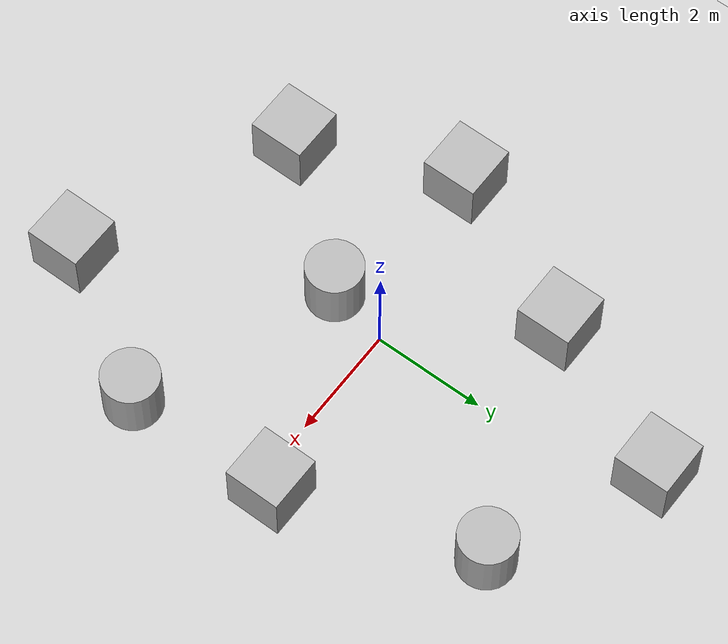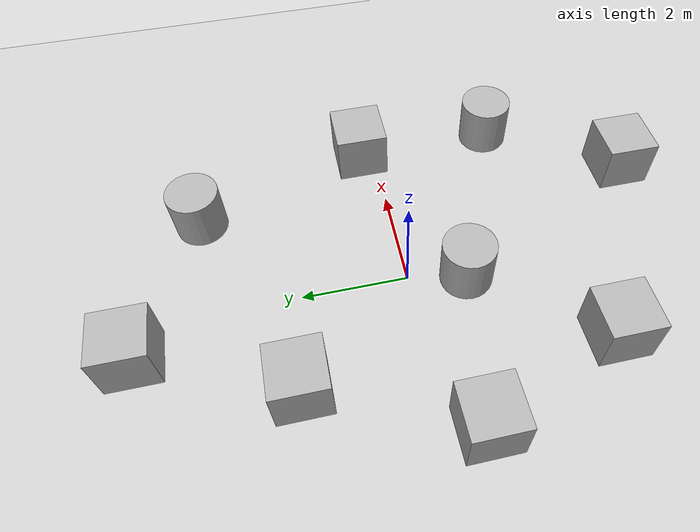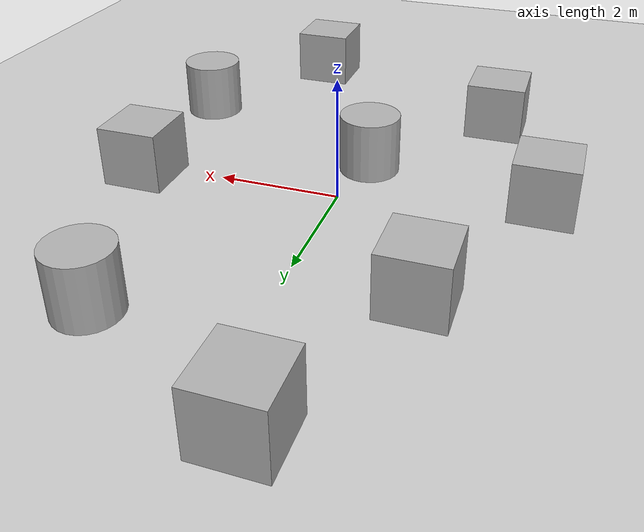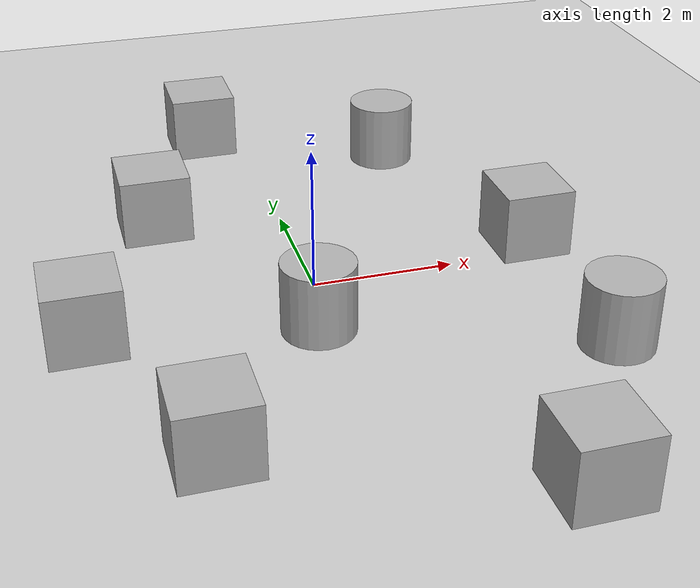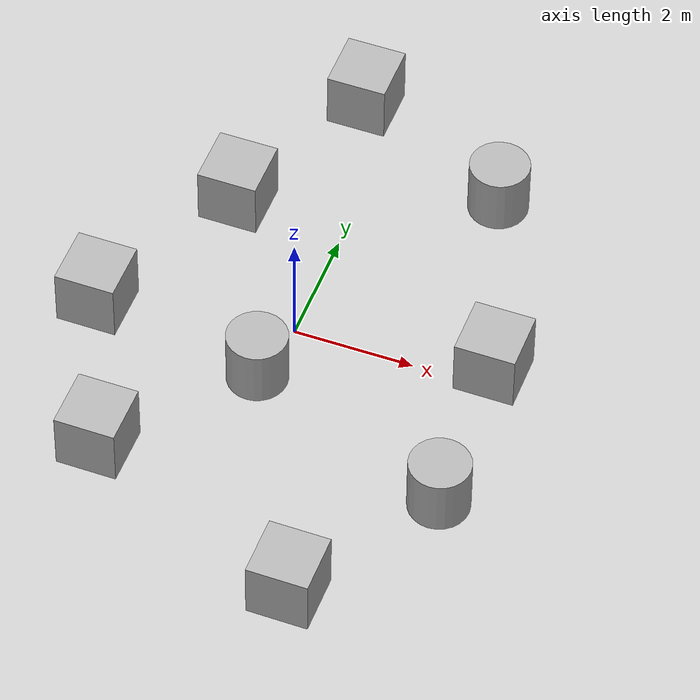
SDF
<sdf version='1.10'>
  <world name='empty'>
    <physics name='1ms' type='ignored'>
      <max_step_size>0.001</max_step_size>
      <real_time_factor>1</real_time_factor>
      <real_time_update_rate>1000</real_time_update_rate>
    </physics>
    <plugin name='gz::sim::systems::Physics' filename='gz-sim-physics-system'/>
    <plugin name='gz::sim::systems::UserCommands' filename='gz-sim-user-commands-system'/>
    <plugin name='gz::sim::systems::SceneBroadcaster' filename='gz-sim-scene-broadcaster-system'/>
    <plugin name='gz::sim::systems::Sensors' filename='gz-sim-sensors-system'>
      <render_engine>ogre2</render_engine>
    </plugin>
    <plugin name='gz::sim::systems::Contact' filename='gz-sim-contact-system'/>
    <gravity>0 0 -9.8000000000000007</gravity>
    <magnetic_field>5.5644999999999998e-06 2.2875799999999999e-05 -4.2388400000000002e-05</magnetic_field>
    <atmosphere type='adiabatic'/>
    <scene>
      <ambient>0.400000006 0.400000006 0.400000006 1</ambient>
      <background>0.699999988 0.699999988 0.699999988 1</background>
      <shadows>true</shadows>
    </scene>
    <model name='ground_plane'>
      <static>true</static>
      <link name='link'>
        <collision name='collision'>
          <geometry>
            <plane>
              <normal>0 0 1</normal>
              <size>100 100</size>
            </plane>
          </geometry>
          <surface>
            <friction>
              <ode/>
            </friction>
            <bounce/>
            <contact/>
          </surface>
        </collision>
        <visual name='visual'>
          <geometry>
            <plane>
              <normal>0 0 1</normal>
              <size>100 100</size>
            </plane>
          </geometry>
          <material>
            <ambient>0.800000012 0.800000012 0.800000012 1</ambient>
            <diffuse>0.800000012 0.800000012 0.800000012 1</diffuse>
            <specular>0.800000012 0.800000012 0.800000012 1</specular>
          </material>
        </visual>
        <pose>0 0 0 0 0 0</pose>
        <inertial>
          <pose>0 0 0 0 0 0</pose>
          <mass>1</mass>
          <inertia>
            <ixx>1</ixx>
            <ixy>0</ixy>
            <ixz>0</ixz>
            <iyy>1</iyy>
            <iyz>0</iyz>
            <izz>1</izz>
          </inertia>
        </inertial>
        <enable_wind>false</enable_wind>
      </link>
      <pose>0 0 0 0 0 0</pose>
      <self_collide>false</self_collide>
    </model>
    <model name='box'>
      <pose>1.8029219467110664 -4.9402323017846799 0.49999999980497606 1.0048033485058014e-21 -2.4640853465547739e-21 -3.9210766489770922e-22</pose>
      <link name='box_link'>
        <inertial>
          <inertia>
            <ixx>0.16666</ixx>
            <ixy>0</ixy>
            <ixz>0</ixz>
            <iyy>0.16666</iyy>
            <iyz>0</iyz>
            <izz>0.16666</izz>
          </inertia>
          <mass>1</mass>
          <pose>0 0 0 0 0 0</pose>
        </inertial>
        <collision name='box_collision'>
          <geometry>
            <box>
              <size>1 1 1</size>
            </box>
          </geometry>
          <surface>
            <friction>
              <ode/>
            </friction>
            <bounce/>
            <contact/>
          </surface>
        </collision>
        <visual name='box_visual'>
          <geometry>
            <box>
              <size>1 1 1</size>
            </box>
          </geometry>
          <material>
            <ambient>0.300000012 0.300000012 0.300000012 1</ambient>
            <diffuse>0.699999988 0.699999988 0.699999988 1</diffuse>
            <specular>1 1 1 1</specular>
          </material>
        </visual>
        <pose>0 0 0 0 0 0</pose>
        <enable_wind>false</enable_wind>
      </link>
      <static>false</static>
      <self_collide>false</self_collide>
    </model>
    <model name='cylinder'>
      <pose>2.1278173043812618 3.7029515542140965 0.49999943207967634 2.5210160480119534e-20 1.5537065464925922e-20 -8.8626556358186986e-21</pose>
      <link name='cylinder_link'>
        <inertial>
          <inertia>
            <ixx>0.14580000000000001</ixx>
            <ixy>0</ixy>
            <ixz>0</ixz>
            <iyy>0.14580000000000001</iyy>
            <iyz>0</iyz>
            <izz>0.125</izz>
          </inertia>
          <mass>1</mass>
          <pose>0 0 0 0 0 0</pose>
        </inertial>
        <collision name='cylinder_collision'>
          <geometry>
            <cylinder>
              <radius>0.5</radius>
              <length>1</length>
            </cylinder>
          </geometry>
          <surface>
            <friction>
              <ode/>
            </friction>
            <bounce/>
            <contact/>
          </surface>
        </collision>
        <visual name='cylinder_visual'>
          <geometry>
            <cylinder>
              <radius>0.5</radius>
              <length>1</length>
            </cylinder>
          </geometry>
          <material>
            <ambient>0.300000012 0.300000012 0.300000012 1</ambient>
            <diffuse>0.699999988 0.699999988 0.699999988 1</diffuse>
            <specular>1 1 1 1</specular>
          </material>
        </visual>
        <pose>0 0 0 0 0 0</pose>
        <enable_wind>false</enable_wind>
      </link>
      <static>false</static>
      <self_collide>false</self_collide>
    </model>
    <model name='box_0'>
      <pose>3.2428602910340398 0.29976069410059664 0.49999999990199806 6.0340761336322896e-22 9.0386193497931382e-22 -1.7912779165349038e-22</pose>
      <link name='box_link'>
        <inertial>
          <inertia>
            <ixx>0.16666</ixx>
            <ixy>0</ixy>
            <ixz>0</ixz>
            <iyy>0.16666</iyy>
            <iyz>0</iyz>
            <izz>0.16666</izz>
          </inertia>
          <mass>1</mass>
          <pose>0 0 0 0 0 0</pose>
        </inertial>
        <collision name='box_collision'>
          <geometry>
            <box>
              <size>1 1 1</size>
            </box>
          </geometry>
          <surface>
            <friction>
              <ode/>
            </friction>
            <bounce/>
            <contact/>
          </surface>
        </collision>
        <visual name='box_visual'>
          <geometry>
            <box>
              <size>1 1 1</size>
            </box>
          </geometry>
          <material>
            <ambient>0.300000012 0.300000012 0.300000012 1</ambient>
            <diffuse>0.699999988 0.699999988 0.699999988 1</diffuse>
            <specular>1 1 1 1</specular>
          </material>
        </visual>
        <pose>0 0 0 0 0 0</pose>
        <enable_wind>false</enable_wind>
      </link>
      <static>false</static>
      <self_collide>false</self_collide>
    </model>
    <model name='box_1'>
      <pose>-1.8490242021830952 2.2432301317952428 0.49999999990199806 6.2287739151293738e-22 9.3279666454713669e-22 -3.6315533669320137e-22</pose>
      <link name='box_link'>
        <inertial>
          <inertia>
            <ixx>0.16666</ixx>
            <ixy>0</ixy>
            <ixz>0</ixz>
            <iyy>0.16666</iyy>
            <iyz>0</iyz>
            <izz>0.16666</izz>
          </inertia>
          <mass>1</mass>
          <pose>0 0 0 0 0 0</pose>
        </inertial>
        <collision name='box_collision'>
          <geometry>
            <box>
              <size>1 1 1</size>
            </box>
          </geometry>
          <surface>
            <friction>
              <ode/>
            </friction>
            <bounce/>
            <contact/>
          </surface>
        </collision>
        <visual name='box_visual'>
          <geometry>
            <box>
              <size>1 1 1</size>
            </box>
          </geometry>
          <material>
            <ambient>0.300000012 0.300000012 0.300000012 1</ambient>
            <diffuse>0.699999988 0.699999988 0.699999988 1</diffuse>
            <specular>1 1 1 1</specular>
          </material>
        </visual>
        <pose>0 0 0 0 0 0</pose>
        <enable_wind>false</enable_wind>
      </link>
      <static>false</static>
      <self_collide>false</self_collide>
    </model>
    <model name='box_2'>
      <pose>-2.0040578507950957 -3.3020820049485993 0.49999999990199806 6.2287739151293738e-22 9.3279666454713669e-22 -3.6315533669320137e-22</pose>
      <link name='box_link'>
        <inertial>
          <inertia>
            <ixx>0.16666</ixx>
            <ixy>0</ixy>
            <ixz>0</ixz>
            <iyy>0.16666</iyy>
            <iyz>0</iyz>
            <izz>0.16666</izz>
          </inertia>
          <mass>1</mass>
          <pose>0 0 0 0 0 0</pose>
        </inertial>
        <collision name='box_collision'>
          <geometry>
            <box>
              <size>1 1 1</size>
            </box>
          </geometry>
          <surface>
            <friction>
              <ode/>
            </friction>
            <bounce/>
            <contact/>
          </surface>
        </collision>
        <visual name='box_visual'>
          <geometry>
            <box>
              <size>1 1 1</size>
            </box>
          </geometry>
          <material>
            <ambient>0.300000012 0.300000012 0.300000012 1</ambient>
            <diffuse>0.699999988 0.699999988 0.699999988 1</diffuse>
            <specular>1 1 1 1</specular>
          </material>
        </visual>
        <pose>0 0 0 0 0 0</pose>
        <enable_wind>false</enable_wind>
      </link>
      <static>false</static>
      <self_collide>false</self_collide>
    </model>
    <model name='cylinder_0'>
      <pose>-0.2109640446078469 -1.0828219663601988 0.49999942638036005 4.0376134486768578e-19 -2.8081143807557941e-19 2.3661727060442264e-20</pose>
      <link name='cylinder_link'>
        <inertial>
          <inertia>
            <ixx>0.14580000000000001</ixx>
            <ixy>0</ixy>
            <ixz>0</ixz>
            <iyy>0.14580000000000001</iyy>
            <iyz>0</iyz>
            <izz>0.125</izz>
          </inertia>
          <mass>1</mass>
          <pose>0 0 0 0 0 0</pose>
        </inertial>
        <collision name='cylinder_collision'>
          <geometry>
            <cylinder>
              <radius>0.5</radius>
              <length>1</length>
            </cylinder>
          </geometry>
          <surface>
            <friction>
              <ode/>
            </friction>
            <bounce/>
            <contact/>
          </surface>
        </collision>
        <visual name='cylinder_visual'>
          <geometry>
            <cylinder>
              <radius>0.5</radius>
              <length>1</length>
            </cylinder>
          </geometry>
          <material>
            <ambient>0.300000012 0.300000012 0.300000012 1</ambient>
            <diffuse>0.699999988 0.699999988 0.699999988 1</diffuse>
            <specular>1 1 1 1</specular>
          </material>
        </visual>
        <pose>0 0 0 0 0 0</pose>
        <enable_wind>false</enable_wind>
      </link>
      <static>false</static>
      <self_collide>false</self_collide>
    </model>
    <model name='cylinder_1'>
      <pose>3.3284070250562969 -2.4677378635023288 0.49999942638036005 6.9787226052870452e-20 1.7754664925004602e-19 -2.1265814315132209e-20</pose>
      <link name='cylinder_link'>
        <inertial>
          <inertia>
            <ixx>0.14580000000000001</ixx>
            <ixy>0</ixy>
            <ixz>0</ixz>
            <iyy>0.14580000000000001</iyy>
            <iyz>0</iyz>
            <izz>0.125</izz>
          </inertia>
          <mass>1</mass>
          <pose>0 0 0 0 0 0</pose>
        </inertial>
        <collision name='cylinder_collision'>
          <geometry>
            <cylinder>
              <radius>0.5</radius>
              <length>1</length>
            </cylinder>
          </geometry>
          <surface>
            <friction>
              <ode/>
            </friction>
            <bounce/>
            <contact/>
          </surface>
        </collision>
        <visual name='cylinder_visual'>
          <geometry>
            <cylinder>
              <radius>0.5</radius>
              <length>1</length>
            </cylinder>
          </geometry>
          <material>
            <ambient>0.300000012 0.300000012 0.300000012 1</ambient>
            <diffuse>0.699999988 0.699999988 0.699999988 1</diffuse>
            <specular>1 1 1 1</specular>
          </material>
        </visual>
        <pose>0 0 0 0 0 0</pose>
        <enable_wind>false</enable_wind>
      </link>
      <static>false</static>
      <self_collide>false</self_collide>
    </model>
    <model name='box_3'>
      <pose>-0.65430018867250972 4.9938583081841363 0.49999999990199806 6.2287739151293738e-22 9.3279666454713669e-22 -3.6315533669320137e-22</pose>
      <link name='box_link'>
        <inertial>
          <inertia>
            <ixx>0.16666</ixx>
            <ixy>0</ixy>
            <ixz>0</ixz>
            <iyy>0.16666</iyy>
            <iyz>0</iyz>
            <izz>0.16666</izz>
          </inertia>
          <mass>1</mass>
          <pose>0 0 0 0 0 0</pose>
        </inertial>
        <collision name='box_collision'>
          <geometry>
            <box>
              <size>1 1 1</size>
            </box>
          </geometry>
          <surface>
            <friction>
              <ode/>
            </friction>
            <bounce/>
            <contact/>
          </surface>
        </collision>
        <visual name='box_visual'>
          <geometry>
            <box>
              <size>1 1 1</size>
            </box>
          </geometry>
          <material>
            <ambient>0.300000012 0.300000012 0.300000012 1</ambient>
            <diffuse>0.699999988 0.699999988 0.699999988 1</diffuse>
            <specular>1 1 1 1</specular>
          </material>
        </visual>
        <pose>0 0 0 0 0 0</pose>
        <enable_wind>false</enable_wind>
      </link>
      <static>false</static>
      <self_collide>false</self_collide>
    </model>
    <model name='box_4'>
      <pose>-3.1449675197730729 -0.59235509186343127 0.49999999990199806 6.2287739151293738e-22 9.3279666454713669e-22 -3.6315533669320137e-22</pose>
      <link name='box_link'>
        <inertial>
          <inertia>
            <ixx>0.16666</ixx>
            <ixy>0</ixy>
            <ixz>0</ixz>
            <iyy>0.16666</iyy>
            <iyz>0</iyz>
            <izz>0.16666</izz>
          </inertia>
          <mass>1</mass>
          <pose>0 0 0 0 0 0</pose>
        </inertial>
        <collision name='box_collision'>
          <geometry>
            <box>
              <size>1 1 1</size>
            </box>
          </geometry>
          <surface>
            <friction>
              <ode/>
            </friction>
            <bounce/>
            <contact/>
          </surface>
        </collision>
        <visual name='box_visual'>
          <geometry>
            <box>
              <size>1 1 1</size>
            </box>
          </geometry>
          <material>
            <ambient>0.300000012 0.300000012 0.300000012 1</ambient>
            <diffuse>0.699999988 0.699999988 0.699999988 1</diffuse>
            <specular>1 1 1 1</specular>
          </material>
        </visual>
        <pose>0 0 0 0 0 0</pose>
        <enable_wind>false</enable_wind>
      </link>
      <static>false</static>
      <self_collide>false</self_collide>
    </model>
    <light name='sun' type='directional'>
      <pose>0 0 10 0 0 0</pose>
      <cast_shadows>true</cast_shadows>
      <intensity>1</intensity>
      <direction>-0.5 0.10000000000000001 -0.90000000000000002</direction>
      <diffuse>0.800000012 0.800000012 0.800000012 1</diffuse>
      <specular>0.200000003 0.200000003 0.200000003 1</specular>
      <attenuation>
        <range>1000</range>
        <linear>0.01</linear>
        <constant>0.90000000000000002</constant>
        <quadratic>0.001</quadratic>
      </attenuation>
      <spot>
        <inner_angle>0</inner_angle>
        <outer_angle>0</outer_angle>
        <falloff>0</falloff>
      </spot>
    </light>
  </world>
</sdf>
